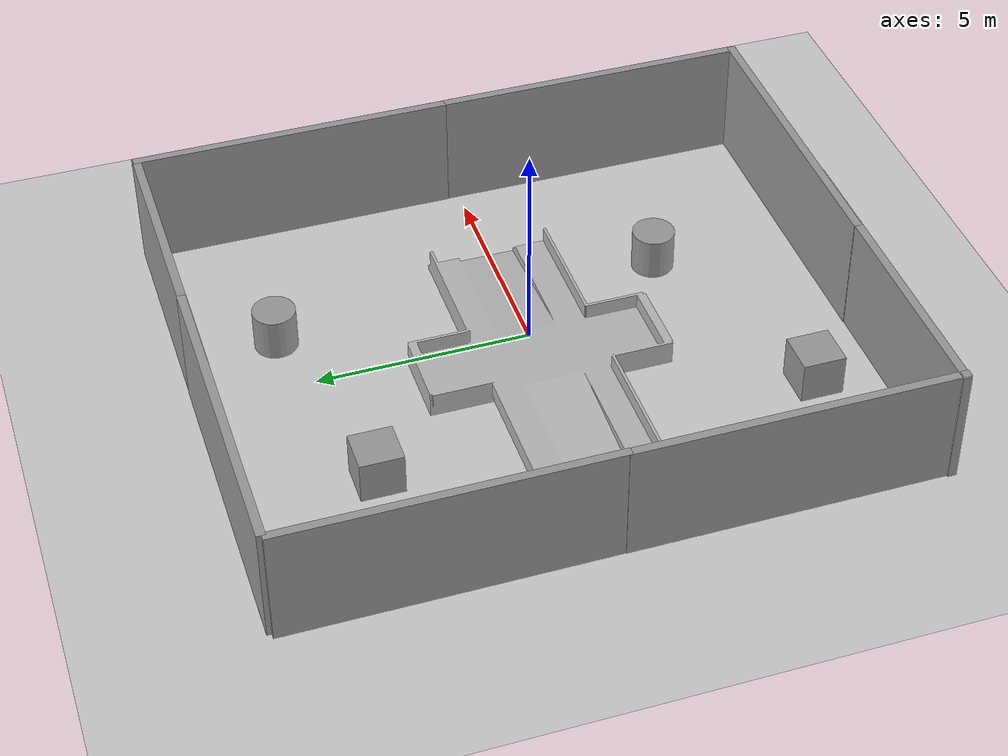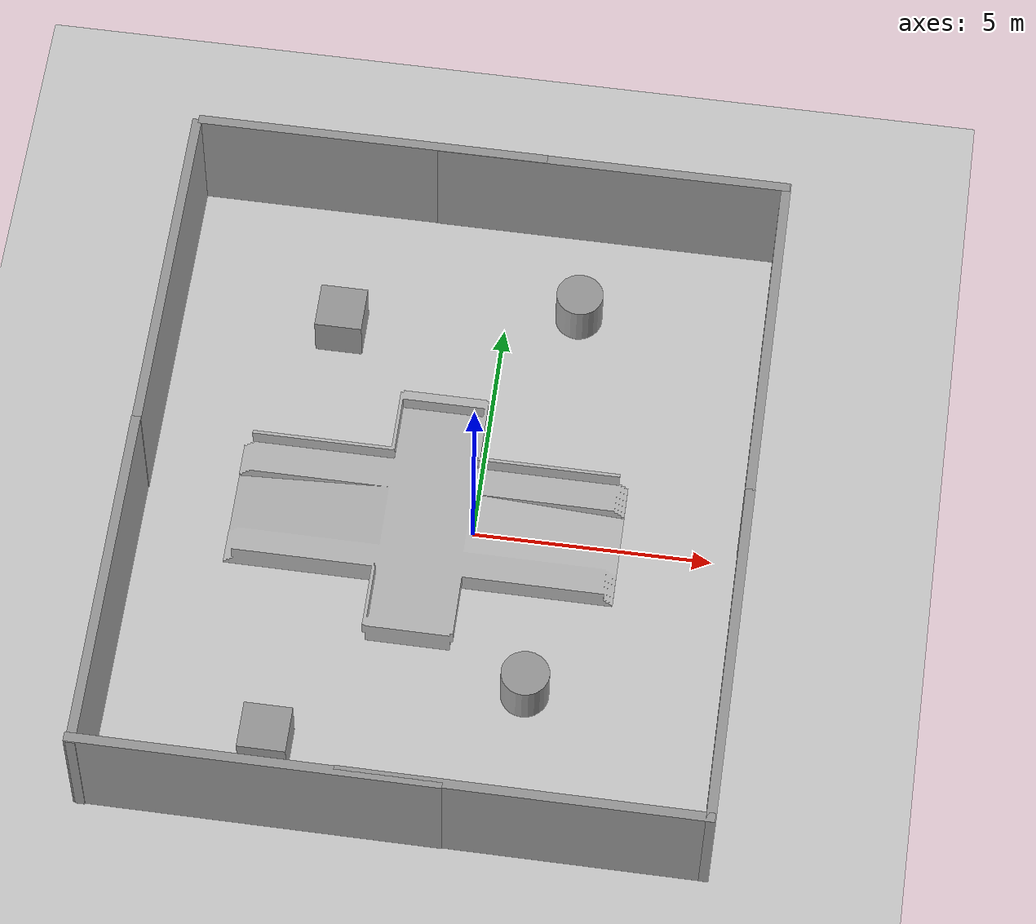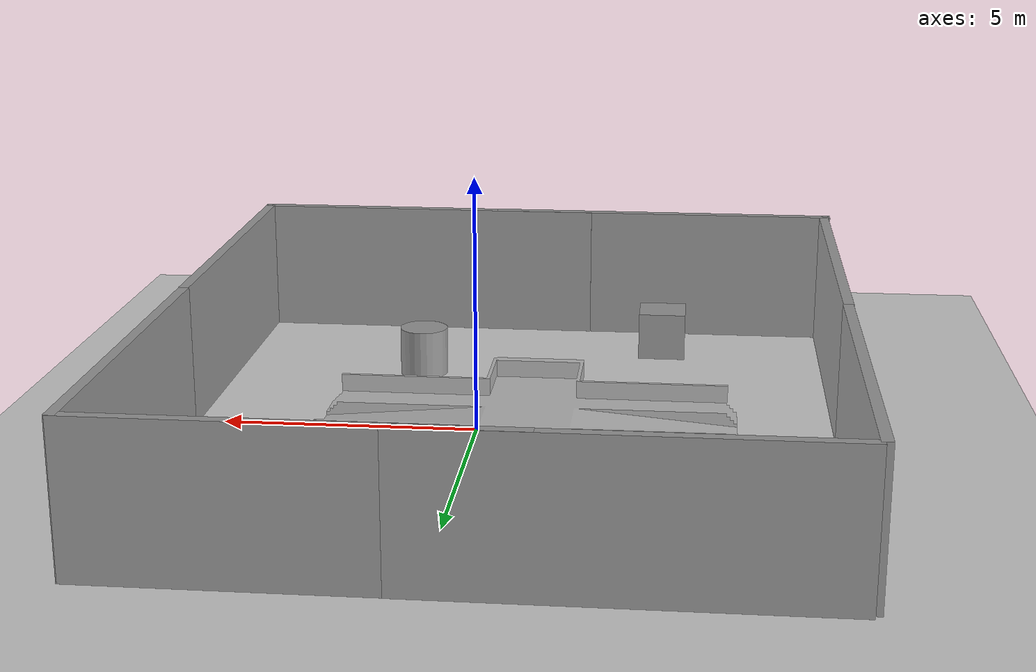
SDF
<sdf version="1.6">
 <world name="default">
  <light name="sun" type="directional">
   <pose>0 0 10 0 -0 0</pose>
   <diffuse>0.8 0.8 0.8 1</diffuse>
   <specular>0.2 0.2 0.2 1</specular>
   <attenuation>
    <range>1000</range>
    <constant>0.9</constant>
    <linear>0.01</linear>
    <quadratic>0.001</quadratic>
   </attenuation>
   <direction>-0.5 0.1 -0.9</direction>
  </light>
  <model name="ground_plane">
   <static>1</static>
   <link name="link">
    <collision name="collision">
     <geometry><plane><normal>0 0 1</normal><size>100 100</size></plane></geometry>
     <surface>
      <contact><collide_bitmask>65535</collide_bitmask></contact>
      <friction><ode><mu>100</mu><mu2>50</mu2></ode></friction>
     </surface>
    </collision>
    <visual name="visual">
     <cast_shadows>0</cast_shadows>
     <geometry><plane><normal>0 0 1</normal><size>100 100</size></plane></geometry>
     <material>
      <script><uri>file://media/materials/scripts/gazebo.material</uri><name>Gazebo/Grey</name></script>
     </material>
    </visual>
   </link>
  </model>
  <gravity>0 0 -9.8</gravity>
  <magnetic_field>6e-06 2.3e-05 -4.2e-05</magnetic_field>
  <atmosphere type="adiabatic"/>
  <physics name="default_physics" default="0" type="ode">
   <max_step_size>0.001</max_step_size>
   <real_time_factor>1</real_time_factor>
   <real_time_update_rate>1000</real_time_update_rate>
  </physics>
  <scene><ambient>0.4 0.4 0.4 1</ambient><background>0.7 0.7 0.7 1</background><shadows>1</shadows></scene>
  <audio><device>default</device></audio>
  <spherical_coordinates>
   <surface_model>EARTH_WGS84</surface_model>
   <latitude_deg>0</latitude_deg>
   <longitude_deg>0</longitude_deg>
   <elevation>0</elevation>
   <heading_deg>0</heading_deg>
  </spherical_coordinates>
  <model name="environment">
   <static>1</static>
   <link name="base">
    <visual name="visual">
     <geometry>
      <mesh><uri>model://environment/meshes/environment.stl</uri><scale>0.7 0.7 0.7</scale></mesh>
     </geometry>
    </visual>
    <collision name="environment_collision">
     <geometry>
      <mesh><uri>model://environment/meshes/environment.stl</uri><scale>0.7 0.7 0.7</scale></mesh>
     </geometry>
     <surface><friction><ode><mu>1</mu><mu2>1</mu2></ode></friction></surface>
    </collision>
   </link>
   <pose>-4.6695 1.43215 -1.05 1.57 -0 0</pose>
  </model>
  <model name="grey_wall">
   <static>1</static>
   <link name="link">
    <pose>0 0 1.4 0 -0 0</pose>
    <collision name="collision"><geometry><box><size>7.5 0.2 2.8</size></box></geometry></collision>
    <visual name="visual">
     <cast_shadows>0</cast_shadows>
     <geometry><box><size>7.5 0.2 2.8</size></box></geometry>
     <material>
      <script>
       <uri>model://grey_wall/materials/scripts</uri>
       <uri>model://grey_wall/materials/textures</uri>
       <name>vrc/grey_wall</name>
      </script>
     </material>
    </visual>
   </link>
   <pose>-3.41093 -7.12043 0 0 -0 0</pose>
  </model>
  <model name="grey_wall_clone">
   <static>1</static>
   <link name="link">
    <pose>0 0 1.4 0 -0 0</pose>
    <collision name="collision"><geometry><box><size>7.5 0.2 2.8</size></box></geometry></collision>
    <visual name="visual">
     <cast_shadows>0</cast_shadows>
     <geometry><box><size>7.5 0.2 2.8</size></box></geometry>
     <material>
      <script>
       <uri>model://grey_wall/materials/scripts</uri>
       <uri>model://grey_wall/materials/textures</uri>
       <name>vrc/grey_wall</name>
      </script>
     </material>
    </visual>
   </link>
   <pose>1.9399 -7.10777 0 0 -0 0</pose>
  </model>
  <model name="grey_wall_clone_0">
   <static>1</static>
   <link name="link">
    <pose>0 0 1.4 0 -0 0</pose>
    <collision name="collision"><geometry><box><size>7.5 0.2 2.8</size></box></geometry></collision>
    <visual name="visual">
     <cast_shadows>0</cast_shadows>
     <geometry><box><size>7.5 0.2 2.8</size></box></geometry>
     <material>
      <script>
       <uri>model://grey_wall/materials/scripts</uri>
       <uri>model://grey_wall/materials/textures</uri>
       <name>vrc/grey_wall</name>
      </script>
     </material>
    </visual>
   </link>
   <pose>-3.22137 7.69145 0 0 -0 0</pose>
  </model>
  <model name="grey_wall_clone_1">
   <static>1</static>
   <link name="link">
    <pose>0 0 1.4 0 -0 0</pose>
    <collision name="collision"><geometry><box><size>7.5 0.2 2.8</size></box></geometry></collision>
    <visual name="visual">
     <cast_shadows>0</cast_shadows>
     <geometry><box><size>7.5 0.2 2.8</size></box></geometry>
     <material>
      <script>
       <uri>model://grey_wall/materials/scripts</uri>
       <uri>model://grey_wall/materials/textures</uri>
       <name>vrc/grey_wall</name>
      </script>
     </material>
    </visual>
   </link>
   <pose>1.94192 7.6839 0 0 -0 0</pose>
  </model>
  <model name="grey_wall_clone_2">
   <static>1</static>
   <link name="link">
    <pose>0 0 1.4 0 -0 0</pose>
    <collision name="collision"><geometry><box><size>7.5 0.2 2.8</size></box></geometry></collision>
    <visual name="visual">
     <cast_shadows>0</cast_shadows>
     <geometry><box><size>7.5 0.2 2.8</size></box></geometry>
     <material>
      <script>
       <uri>model://grey_wall/materials/scripts</uri>
       <uri>model://grey_wall/materials/textures</uri>
       <name>vrc/grey_wall</name>
      </script>
     </material>
    </visual>
   </link>
   <pose>5.61291 -3.46149 0 0 -0 1.57</pose>
  </model>
  <model name="grey_wall_clone_2_clone">
   <static>1</static>
   <link name="link">
    <pose>0 0 1.4 0 -0 0</pose>
    <collision name="collision"><geometry><box><size>7.5 0.2 2.8</size></box></geometry></collision>
    <visual name="visual">
     <cast_shadows>0</cast_shadows>
     <geometry><box><size>7.5 0.2 2.8</size></box></geometry>
     <material>
      <script>
       <uri>model://grey_wall/materials/scripts</uri>
       <uri>model://grey_wall/materials/textures</uri>
       <name>vrc/grey_wall</name>
      </script>
     </material>
    </visual>
   </link>
   <pose>5.61145 4.01582 0 0 -0 1.57</pose>
  </model>
  <model name="grey_wall_clone_2_clone_0">
   <static>1</static>
   <link name="link">
    <pose>0 0 1.4 0 -0 0</pose>
    <collision name="collision"><geometry><box><size>7.5 0.2 2.8</size></box></geometry></collision>
    <visual name="visual">
     <cast_shadows>0</cast_shadows>
     <geometry><box><size>7.5 0.2 2.8</size></box></geometry>
     <material>
      <script>
       <uri>model://grey_wall/materials/scripts</uri>
       <uri>model://grey_wall/materials/textures</uri>
       <name>vrc/grey_wall</name>
      </script>
     </material>
    </visual>
   </link>
   <pose>-7.01813 -3.49176 0 0 -0 1.57</pose>
  </model>
  <model name="grey_wall_clone_2_clone_1">
   <static>1</static>
   <link name="link">
    <pose>0 0 1.4 0 -0 0</pose>
    <collision name="collision"><geometry><box><size>7.5 0.2 2.8</size></box></geometry></collision>
    <visual name="visual">
     <cast_shadows>0</cast_shadows>
     <geometry><box><size>7.5 0.2 2.8</size></box></geometry>
     <material>
      <script>
       <uri>model://grey_wall/materials/scripts</uri>
       <uri>model://grey_wall/materials/textures</uri>
       <name>vrc/grey_wall</name>
      </script>
     </material>
    </visual>
   </link>
   <pose>-7.00075 3.9322 0 0 -0 1.57</pose>
  </model>
  <model name="unit_box">
   <pose>-3.4948 -5.5057 0.499995 0 -1e-05 0</pose>
   <link name="link">
    <inertial>
     <mass>1</mass>
     <inertia>
      <ixx>0.166667</ixx>
      <ixy>0</ixy>
      <ixz>0</ixz>
      <iyy>0.166667</iyy>
      <iyz>0</iyz>
      <izz>0.166667</izz>
     </inertia>
    </inertial>
    <collision name="collision"><geometry><box><size>1 1 1</size></box></geometry></collision>
    <visual name="visual">
     <geometry><box><size>1 1 1</size></box></geometry>
     <material>
      <script><name>Gazebo/Grey</name><uri>file://media/materials/scripts/gazebo.material</uri></script>
     </material>
    </visual>
   </link>
  </model>
  <model name="unit_cylinder">
   <pose>1.54472 -3.5808 0.499998 3e-06 -3e-06 0</pose>
   <link name="link">
    <inertial>
     <mass>1</mass>
     <inertia><ixx>0.145833</ixx><ixy>0</ixy><ixz>0</ixz><iyy>0.145833</iyy><iyz>0</iyz><izz>0.125</izz></inertia>
    </inertial>
    <collision name="collision">
     <geometry><cylinder><radius>0.5</radius><length>1</length></cylinder></geometry>
    </collision>
    <visual name="visual">
     <geometry><cylinder><radius>0.5</radius><length>1</length></cylinder></geometry>
     <material>
      <script><name>Gazebo/Grey</name><uri>file://media/materials/scripts/gazebo.material</uri></script>
     </material>
    </visual>
   </link>
  </model>
  <model name="unit_box_0">
   <pose>-3.45413 4.54361 0.499995 0 -1e-05 0</pose>
   <link name="link">
    <inertial>
     <mass>1</mass>
     <inertia>
      <ixx>0.166667</ixx>
      <ixy>0</ixy>
      <ixz>0</ixz>
      <iyy>0.166667</iyy>
      <iyz>0</iyz>
      <izz>0.166667</izz>
     </inertia>
    </inertial>
    <collision name="collision"><geometry><box><size>1 1 1</size></box></geometry></collision>
    <visual name="visual">
     <geometry><box><size>1 1 1</size></box></geometry>
     <material>
      <script><name>Gazebo/Grey</name><uri>file://media/materials/scripts/gazebo.material</uri></script>
     </material>
    </visual>
   </link>
  </model>
  <model name="unit_cylinder_0">
   <pose>1.53769 5.55066 0.499998 3e-06 -3e-06 0</pose>
   <link name="link">
    <inertial>
     <mass>1</mass>
     <inertia><ixx>0.145833</ixx><ixy>0</ixy><ixz>0</ixz><iyy>0.145833</iyy><iyz>0</iyz><izz>0.125</izz></inertia>
    </inertial>
    <collision name="collision">
     <geometry><cylinder><radius>0.5</radius><length>1</length></cylinder></geometry>
    </collision>
    <visual name="visual">
     <geometry><cylinder><radius>0.5</radius><length>1</length></cylinder></geometry>
     <material>
      <script><name>Gazebo/Grey</name><uri>file://media/materials/scripts/gazebo.material</uri></script>
     </material>
    </visual>
   </link>
  </model>
 </world>
</sdf>
